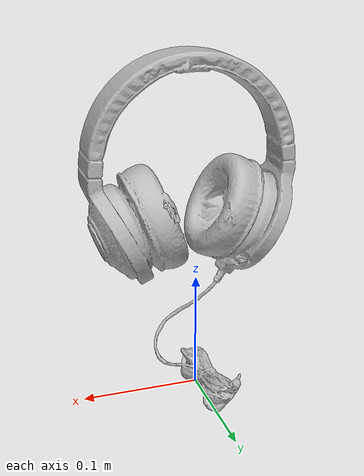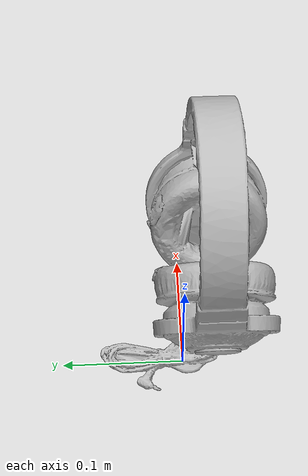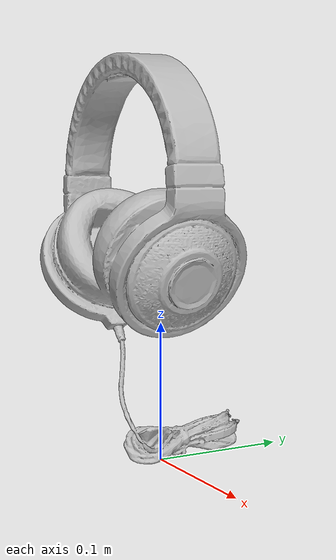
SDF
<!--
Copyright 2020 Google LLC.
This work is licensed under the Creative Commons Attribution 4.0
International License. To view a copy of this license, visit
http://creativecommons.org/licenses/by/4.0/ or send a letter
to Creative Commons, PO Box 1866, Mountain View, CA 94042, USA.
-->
<?xml version="1.0" ?>
<sdf version="1.6">
  <model name="Razer_Kraken_Pro_headset_Full_size_Black">
    <link name="link_0">
      <visual name="visual">
        <geometry>
          <mesh>
            <uri>model://headphones/meshes/model.obj</uri>
          </mesh>
        </geometry>
      </visual>
      <collision name="collision_0">
        <geometry>
          <mesh>
            <uri>model://headphones/meshes/model.obj</uri>
          </mesh>
        </geometry>
      </collision>
    </link>
  </model>
</sdf>
